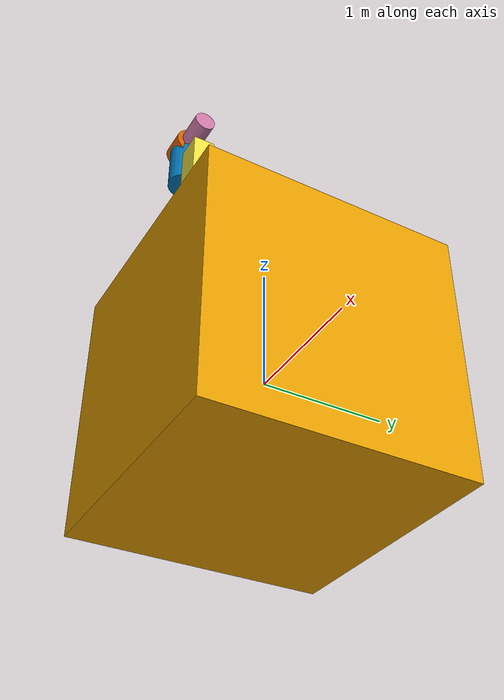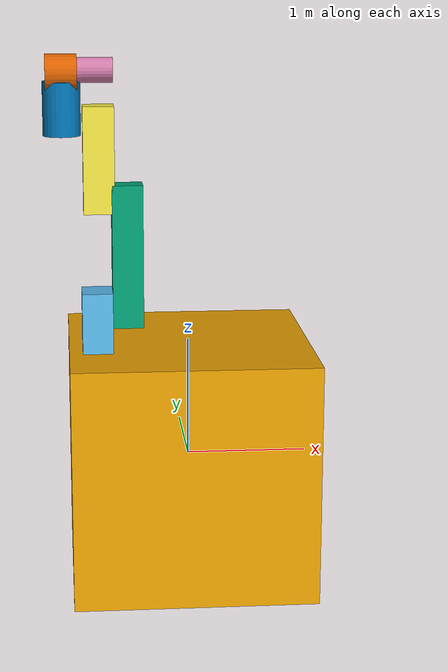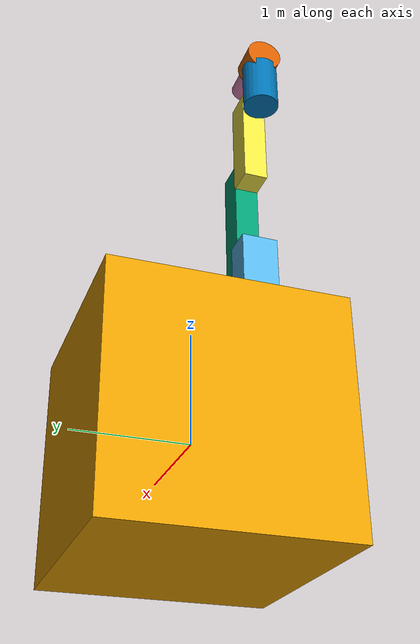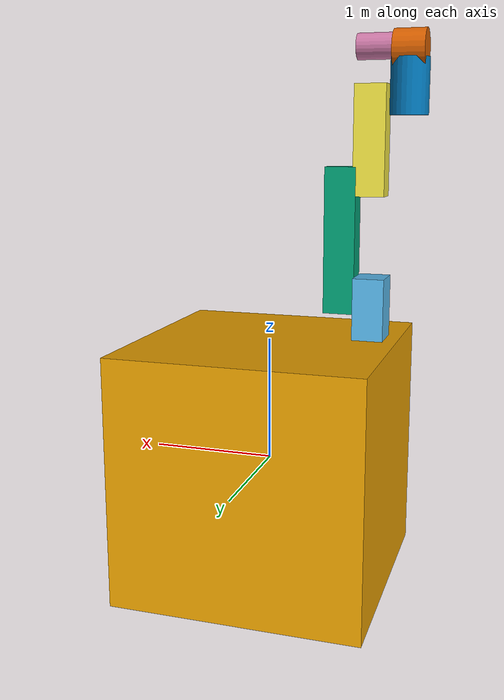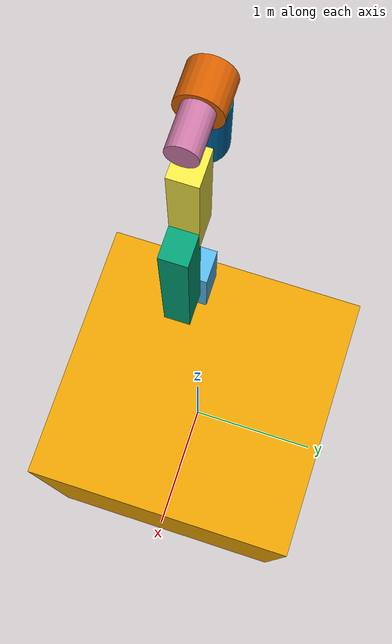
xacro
<?xml version="1.0"?>
<robot name="ets_vii">
  <link name="base_link">
    <visual>
      <origin rpy="0 0 0" xyz="0 0 0" />
      <geometry>
        <box size="2 2 2" />
      </geometry>
    </visual>
  </link>

  <link name="link_1">
    <visual>
      <origin rpy="0 0 0" xyz="0.025 0 0.25" />
      <geometry>
        <box size="0.25 0.3 0.5" />
      </geometry>
    </visual>
  </link>

  <joint name="joint1" type="revolute">
    <axis xyz="0 0 1"/>
    <limit effort="1000.0" lower="-3.0" upper="3.0" velocity="0.5"/>
    <parent link="base_link" />
    <child link="link_1" />
    <origin xyz="-0.79 -0.29 1" />
  </joint>

  <link name="link_2">
    <visual>
      <origin rpy="0 0 0" xyz="0.125 0 0.435" />
      <geometry>
        <box size="0.25 0.2 1.17" />
      </geometry>
    </visual>
  </link>

  <joint name="joint2" type="revolute">
    <axis xyz="1 0 0"/>
    <limit effort="1000.0" lower="-3.0" upper="3.0" velocity="0.5"/>
    <parent link="link_1" />
    <child link="link_2" />
    <origin xyz="0.15 0 0.35" />
  </joint>

   <link name="link_3">
    <visual>
      <origin rpy="0 0 0" xyz="0.025 0 0.350" />
      <geometry>
        <box size="0.25 0.2 0.86" />
      </geometry>
    </visual>
  </link>

  <joint name="joint3" type="revolute">
    <axis xyz="-1 0 0"/>
    <limit effort="1000.0" lower="-3.0" upper="3.0" velocity="0.5"/>
    <parent link="link_2" />
    <child link="link_3" />
    <origin xyz="-0.125 0 0.87" />
  </joint>

  <link name="link_4">
    <visual>
      <origin rpy="0 0 0" xyz="0 0 0.127" />
      <geometry>
        <cylinder radius="0.15" length="0.427"/>
      </geometry>
    </visual>
  </link>

   <joint name="joint4" type="revolute">
    <axis xyz="1 0 0"/>
    <limit effort="1000.0" lower="-3.0" upper="3.0" velocity="0.5"/>
    <parent link="link_3" />
    <child link="link_4" />
    <origin xyz="-0.262 0 0.63" />
  </joint>

  <link name="link_5">
    <visual>
      <origin rpy="0 1.57079 0" xyz="0 0 0.127" />
      <geometry>
        <cylinder radius="0.15" length="0.25"/>
      </geometry>
    </visual>
  </link>

   <joint name="joint5" type="revolute">
    <axis xyz="0 0 1"/>
    <limit effort="1000.0" lower="-3.0" upper="3.0" velocity="0.5"/>
    <parent link="link_4" />
    <child link="link_5" />
    <origin xyz="0 0 0.277" />
  </joint>

  <link name="link_6">
    <visual>
      <origin rpy="0 1.57079 0" xyz="0.141 0 0" />
      <geometry>
        <cylinder radius="0.1" length="0.282"/>
      </geometry>
    </visual>
  </link>

   <joint name="joint6" type="revolute">
    <axis xyz="1 0 0"/>
    <limit effort="1000.0" lower="-3.0" upper="3.0" velocity="0.5"/>
    <parent link="link_5" />
    <child link="link_6" />
    <origin xyz="0.125 0 0.15" rpy="0 0 0" />
  </joint>

</robot>
